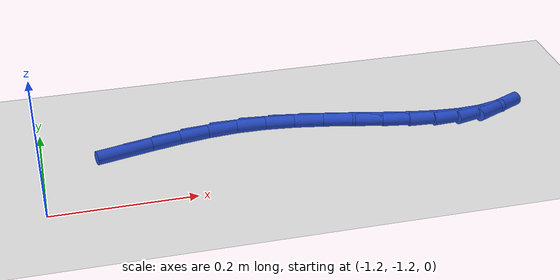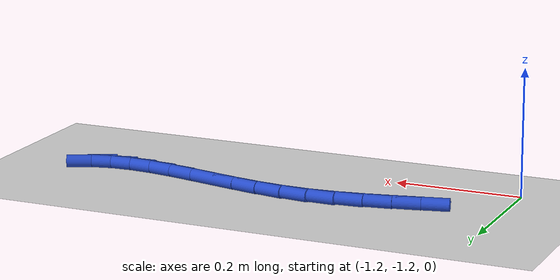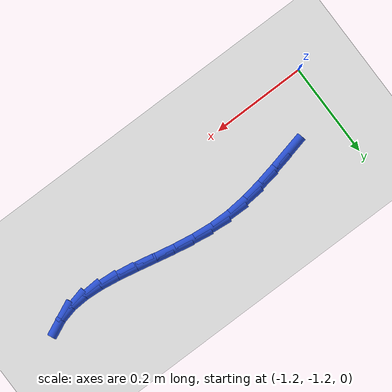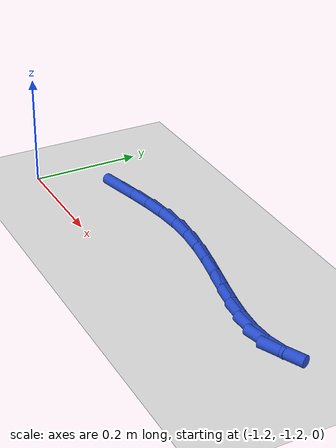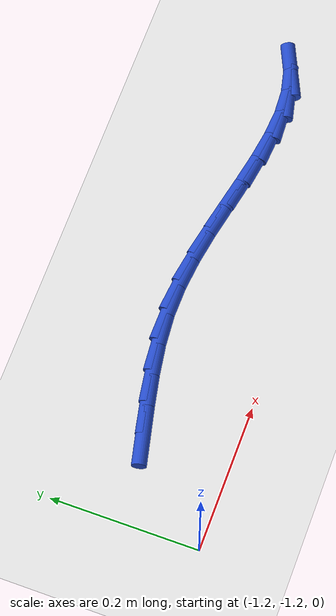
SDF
<sdf version="1.6">
 <world name="default">
  <model name="ground_plane">
   <static>1</static>
   <link name="link">
    <collision name="collision">
     <geometry><plane><normal>0 0 1</normal><size>100 100</size></plane></geometry>
     <surface><friction><ode><mu>100</mu><mu2>50</mu2></ode></friction></surface>
    </collision>
    <visual name="visual">
     <cast_shadows>0</cast_shadows>
     <geometry><plane><normal>0 0 1</normal><size>100 100</size></plane></geometry>
     <material>
      <script><uri>file://media/materials/scripts/gazebo.material</uri><name>Gazebo/WhiteGlow</name></script>
     </material>
    </visual>
   </link>
  </model>
  <model name="line">
   <link name="link_135">
    <pose>-1.0861138601767513 -1.082646444587104 0.01 0 1.57 0.22564060591143584</pose>
    <collision name="collision">
     <geometry><cylinder><radius>0.01</radius><length>0.08</length></cylinder></geometry>
    </collision>
    <visual name="visual">
     <material>
      <script><name>Gazebo/Blue</name><uri>file://media/materials/scripts/gazebo.material</uri></script>
     </material>
     <geometry><cylinder><radius>0.01</radius><length>0.08</length></cylinder></geometry>
    </visual>
   </link>
   <link name="link_136">
    <pose>-1.0448714191864337 -1.0731792574131562 0.01 0 1.57 0.20487395038500567</pose>
    <collision name="collision">
     <geometry><cylinder><radius>0.01</radius><length>0.08</length></cylinder></geometry>
    </collision>
    <visual name="visual">
     <material>
      <script><name>Gazebo/Blue</name><uri>file://media/materials/scripts/gazebo.material</uri></script>
     </material>
     <geometry><cylinder><radius>0.01</radius><length>0.08</length></cylinder></geometry>
    </visual>
   </link>
   <link name="link_137">
    <pose>-1.0029311242383832 -1.0644645119746587 0.01 0 1.57 0.1584269508288073</pose>
    <collision name="collision">
     <geometry><cylinder><radius>0.01</radius><length>0.08</length></cylinder></geometry>
    </collision>
    <visual name="visual">
     <material>
      <script><name>Gazebo/Blue</name><uri>file://media/materials/scripts/gazebo.material</uri></script>
     </material>
     <geometry><cylinder><radius>0.01</radius><length>0.08</length></cylinder></geometry>
    </visual>
   </link>
   <link name="link_138">
    <pose>-0.9604852395829647 -1.0576831090309244 0.01 0 1.57 0.0855536885223896</pose>
    <collision name="collision">
     <geometry><cylinder><radius>0.01</radius><length>0.08</length></cylinder></geometry>
    </collision>
    <visual name="visual">
     <material>
      <script><name>Gazebo/Blue</name><uri>file://media/materials/scripts/gazebo.material</uri></script>
     </material>
     <geometry><cylinder><radius>0.01</radius><length>0.08</length></cylinder></geometry>
    </visual>
   </link>
   <link name="link_139">
    <pose>-0.9177260294705423 -1.0540159493412653 0.01 0 1.57 -0.011369109680276709</pose>
    <collision name="collision">
     <geometry><cylinder><radius>0.01</radius><length>0.08</length></cylinder></geometry>
    </collision>
    <visual name="visual">
     <material>
      <script><name>Gazebo/Blue</name><uri>file://media/materials/scripts/gazebo.material</uri></script>
     </material>
     <geometry><cylinder><radius>0.01</radius><length>0.08</length></cylinder></geometry>
    </visual>
   </link>
   <link name="link_140">
    <pose>-0.874850533039709 -1.05450342656619 0.01 0 1.57 -0.09983025556247378</pose>
    <collision name="collision">
     <geometry><cylinder><radius>0.01</radius><length>0.08</length></cylinder></geometry>
    </collision>
    <visual name="visual">
     <material>
      <script><name>Gazebo/Blue</name><uri>file://media/materials/scripts/gazebo.material</uri></script>
     </material>
     <geometry><cylinder><radius>0.01</radius><length>0.08</length></cylinder></geometry>
    </visual>
   </link>
   <link name="link_141">
    <pose>-0.8321033937336352 -1.0587851177593044 0.01 0 1.57 -0.16177755223568438</pose>
    <collision name="collision">
     <geometry><cylinder><radius>0.01</radius><length>0.08</length></cylinder></geometry>
    </collision>
    <visual name="visual">
     <material>
      <script><name>Gazebo/Blue</name><uri>file://media/materials/scripts/gazebo.material</uri></script>
     </material>
     <geometry><cylinder><radius>0.01</radius><length>0.08</length></cylinder></geometry>
    </visual>
   </link>
   <link name="link_142">
    <pose>-0.7897565884506156 -1.0656962786380315 0.01 0 1.57 -0.19812181398653791</pose>
    <collision name="collision">
     <geometry><cylinder><radius>0.01</radius><length>0.08</length></cylinder></geometry>
    </collision>
    <visual name="visual">
     <material>
      <script><name>Gazebo/Blue</name><uri>file://media/materials/scripts/gazebo.material</uri></script>
     </material>
     <geometry><cylinder><radius>0.01</radius><length>0.08</length></cylinder></geometry>
    </visual>
   </link>
   <link name="link_143">
    <pose>-0.7480824193495967 -1.0740625937156583 0.01 0 1.57 -0.2092019693554726</pose>
    <collision name="collision">
     <geometry><cylinder><radius>0.01</radius><length>0.08</length></cylinder></geometry>
    </collision>
    <visual name="visual">
     <material>
      <script><name>Gazebo/Blue</name><uri>file://media/materials/scripts/gazebo.material</uri></script>
     </material>
     <geometry><cylinder><radius>0.01</radius><length>0.08</length></cylinder></geometry>
    </visual>
   </link>
   <link name="link_144">
    <pose>-0.7073531885895218 -1.082709747505473 0.01 0 1.57 -0.19377377429935094</pose>
    <collision name="collision">
     <geometry><cylinder><radius>0.01</radius><length>0.08</length></cylinder></geometry>
    </collision>
    <visual name="visual">
     <material>
      <script><name>Gazebo/Blue</name><uri>file://media/materials/scripts/gazebo.material</uri></script>
     </material>
     <geometry><cylinder><radius>0.01</radius><length>0.08</length></cylinder></geometry>
    </visual>
   </link>
   <link name="link_145">
    <pose>-0.667841198329335 -1.090463424520763 0.01 0 1.57 -0.14844024377855966</pose>
    <collision name="collision">
     <geometry><cylinder><radius>0.01</radius><length>0.08</length></cylinder></geometry>
    </collision>
    <visual name="visual">
     <material>
      <script><name>Gazebo/Blue</name><uri>file://media/materials/scripts/gazebo.material</uri></script>
     </material>
     <geometry><cylinder><radius>0.01</radius><length>0.08</length></cylinder></geometry>
    </visual>
   </link>
   <link name="link_146">
    <pose>-0.6298187507279804 -1.0961493092748162 0.01 0 1.57 -0.06729306575308994</pose>
    <collision name="collision">
     <geometry><cylinder><radius>0.01</radius><length>0.08</length></cylinder></geometry>
    </collision>
    <visual name="visual">
     <material>
      <script><name>Gazebo/Blue</name><uri>file://media/materials/scripts/gazebo.material</uri></script>
     </material>
     <geometry><cylinder><radius>0.01</radius><length>0.08</length></cylinder></geometry>
    </visual>
   </link>
   <link name="link_147">
    <pose>-0.5935581479444024 -1.09859308628092 0.01 0 1.57 0.057571439238764587</pose>
    <collision name="collision">
     <geometry><cylinder><radius>0.01</radius><length>0.08</length></cylinder></geometry>
    </collision>
    <visual name="visual">
     <material>
      <script><name>Gazebo/Blue</name><uri>file://media/materials/scripts/gazebo.material</uri></script>
     </material>
     <geometry><cylinder><radius>0.01</radius><length>0.08</length></cylinder></geometry>
    </visual>
   </link>
   <link name="link_148">
    <pose>-0.5593316921375445 -1.096620440052362 0.01 0 1.57 0.23212398373920634</pose>
    <collision name="collision">
     <geometry><cylinder><radius>0.01</radius><length>0.08</length></cylinder></geometry>
    </collision>
    <visual name="visual">
     <material>
      <script><name>Gazebo/Blue</name><uri>file://media/materials/scripts/gazebo.material</uri></script>
     </material>
     <geometry><cylinder><radius>0.01</radius><length>0.08</length></cylinder></geometry>
    </visual>
   </link>
   <link name="link_149">
    <pose>-0.5274068441110106 -1.0890738878007546 0.01 0 1.57 0.4300323043441532</pose>
    <collision name="collision">
     <geometry><cylinder><radius>0.01</radius><length>0.08</length></cylinder></geometry>
    </collision>
    <visual name="visual">
     <material>
      <script><name>Gazebo/Blue</name><uri>file://media/materials/scripts/gazebo.material</uri></script>
     </material>
     <geometry><cylinder><radius>0.01</radius><length>0.08</length></cylinder></geometry>
    </visual>
   </link>
  </model>
 </world>
</sdf>
